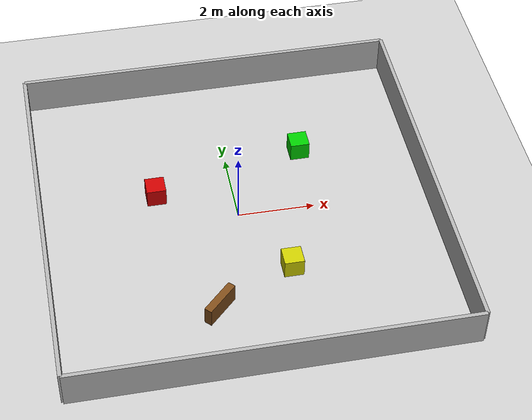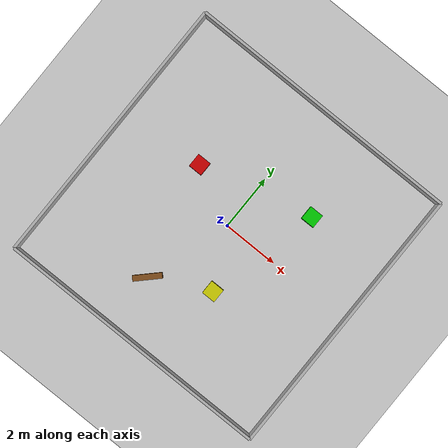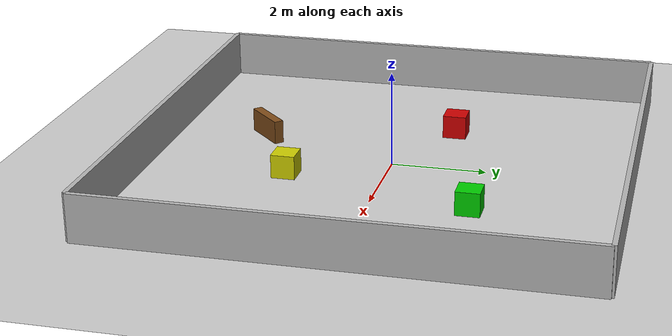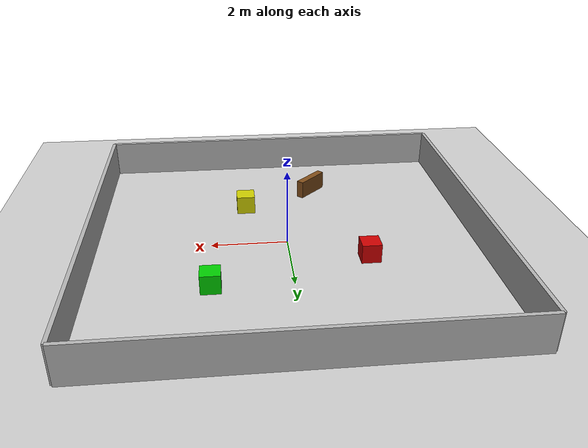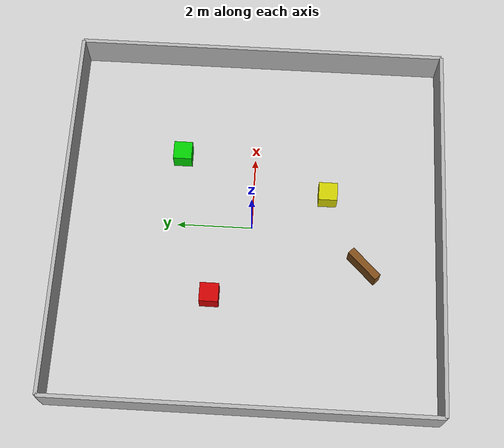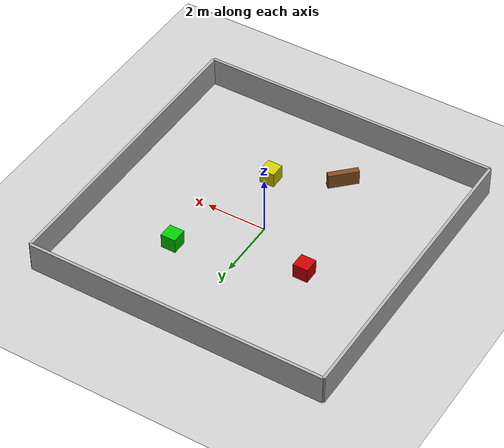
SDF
<?xml version="1.0" ?>
<sdf version="1.6">
  <world name="obstacle_world">

    <!-- Global settings -->
    <gravity>0 0 -9.8</gravity>
    <physics type="ode">
      <real_time_update_rate>1000.0</real_time_update_rate>
      <max_step_size>0.001</max_step_size>
      <real_time_factor>1</real_time_factor>
    </physics>

    <!-- Plugins -->
    <plugin name="gazebo_ros_state" filename="libgazebo_ros_state.so">
      <ros>
        <namespace>/gazebo</namespace>
      </ros>
      <update_rate>1.0</update_rate>
    </plugin>

    <!-- Lighting -->
    <include>
      <uri>model://sun</uri>
    </include>

    <!-- Ground plane -->
    <include>
      <uri>model://ground_plane</uri>
    </include>

    <!-- Surrounding walls -->
    <!-- North wall -->
    <model name="wall_north">
      <static>true</static>
      <pose>0 5 0.5 0 0 0</pose>
      <link name="link">
        <collision name="collision">
          <geometry><box><size>10 0.1 1</size></box></geometry>
        </collision>
        <visual name="visual">
          <geometry><box><size>10 0.1 1</size></box></geometry>
          <material><ambient>0.7 0.7 0.7 1</ambient></material>
        </visual>
      </link>
    </model>

    <!-- South wall -->
    <model name="wall_south">
      <static>true</static>
      <pose>0 -5 0.5 0 0 0</pose>
      <link name="link">
        <collision name="collision">
          <geometry><box><size>10 0.1 1</size></box></geometry>
        </collision>
        <visual name="visual">
          <geometry><box><size>10 0.1 1</size></box></geometry>
          <material><ambient>0.7 0.7 0.7 1</ambient></material>
        </visual>
      </link>
    </model>

    <!-- East wall -->
    <model name="wall_east">
      <static>true</static>
      <pose>5 0 0.5 0 0 1.5707</pose>
      <link name="link">
        <collision name="collision">
          <geometry><box><size>10 0.1 1</size></box></geometry>
        </collision>
        <visual name="visual">
          <geometry><box><size>10 0.1 1</size></box></geometry>
          <material><ambient>0.7 0.7 0.7 1</ambient></material>
        </visual>
      </link>
    </model>

    <!-- West wall -->
    <model name="wall_west">
      <static>true</static>
      <pose>-5 0 0.5 0 0 1.5707</pose>
      <link name="link">
        <collision name="collision">
          <geometry><box><size>10 0.1 1</size></box></geometry>
        </collision>
        <visual name="visual">
          <geometry><box><size>10 0.1 1</size></box></geometry>
          <material><ambient>0.7 0.7 0.7 1</ambient></material>
        </visual>
      </link>
    </model>

    <!-- Obstacle 1 -->
    <model name="obstacle_1">
      <static>true</static>
      <pose>2 2 0.25 0 0 0</pose>
      <link name="link">
        <collision name="collision">
          <geometry><box><size>0.5 0.5 0.5</size></box></geometry>
        </collision>
        <visual name="visual">
          <geometry><box><size>0.5 0.5 0.5</size></box></geometry>
          <material><ambient>0 0.8 0 1</ambient></material>
        </visual>
      </link>
    </model>

    <!-- Obstacle 2 -->
    <model name="obstacle_2">
      <static>true</static>
      <pose>-2 1 0.25 0 0 0</pose>
      <link name="link">
        <collision name="collision">
          <geometry><box><size>0.5 0.5 0.5</size></box></geometry>
        </collision>
        <visual name="visual">
          <geometry><box><size>0.5 0.5 0.5</size></box></geometry>
          <material><ambient>0.8 0 0 1</ambient></material>
        </visual>
      </link>
    </model>

    <!-- Obstacle 3 -->
    <model name="obstacle_3">
      <static>true</static>
      <pose>1 -2 0.25 0 0 0</pose>
      <link name="link">
        <collision name="collision">
          <geometry><box><size>0.5 0.5 0.5</size></box></geometry>
        </collision>
        <visual name="visual">
          <geometry><box><size>0.5 0.5 0.5</size></box></geometry>
          <material><ambient>0.8 0.8 0 1</ambient></material>
        </visual>
      </link>
    </model>

    <!-- Obstacle 4 - wall fragment -->
    <model name="obstacle_4">
      <static>true</static>
      <pose>-1 -3 0.25 0 0 0.785</pose>
      <link name="link">
        <collision name="collision">
          <geometry><box><size>1.0 0.2 0.5</size></box></geometry>
        </collision>
        <visual name="visual">
          <geometry><box><size>1.0 0.2 0.5</size></box></geometry>
          <material><ambient>0.5 0.3 0.1 1</ambient></material>
        </visual>
      </link>
    </model>

  </world>
</sdf>
